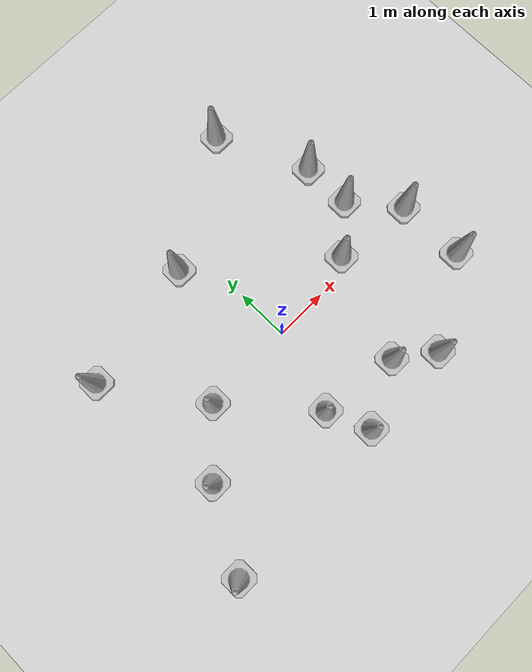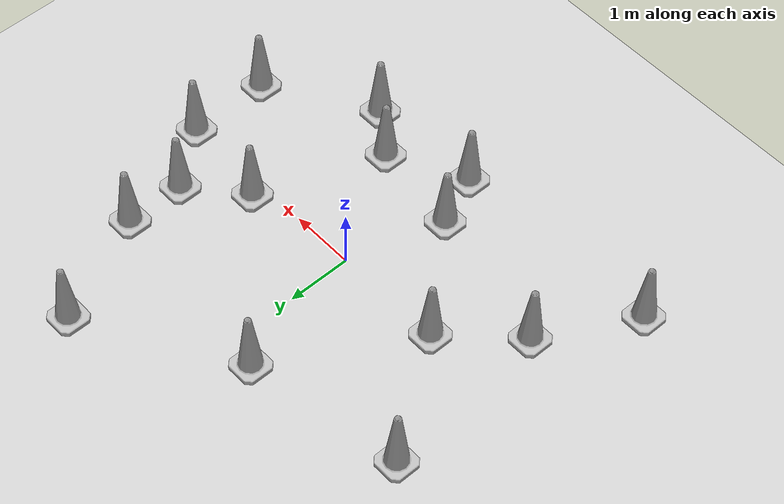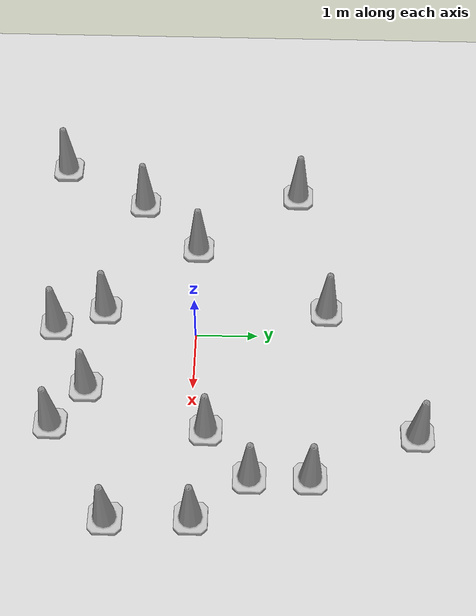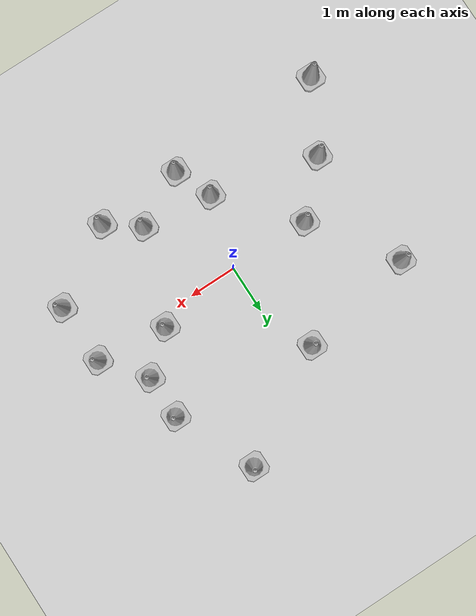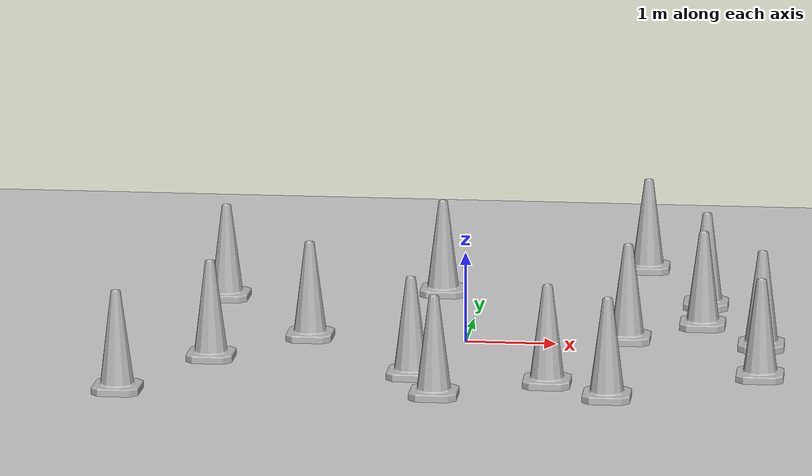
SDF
<sdf version="1.7">
 <world name="default">
  <light name="sun" type="directional">
   <pose>0 0 10 0 -0 0</pose>
   <diffuse>0.8 0.8 0.8 1</diffuse>
   <specular>0.2 0.2 0.2 1</specular>
   <attenuation>
    <range>1000</range>
    <constant>0.9</constant>
    <linear>0.01</linear>
    <quadratic>0.001</quadratic>
   </attenuation>
   <direction>-0.5 0.1 -0.9</direction>
   <spot><inner_angle>0</inner_angle><outer_angle>0</outer_angle><falloff>0</falloff></spot>
  </light>
  <model name="ground_plane">
   <static>1</static>
   <link name="link">
    <collision name="collision">
     <geometry><plane><normal>0 0 1</normal><size>100 100</size></plane></geometry>
     <surface>
      <contact><collide_bitmask>65535</collide_bitmask></contact>
      <friction><ode><mu>100</mu><mu2>50</mu2></ode></friction>
     </surface>
    </collision>
    <visual name="visual">
     <cast_shadows>0</cast_shadows>
     <geometry><plane><normal>0 0 1</normal><size>100 100</size></plane></geometry>
     <material>
      <script><uri>file://media/materials/scripts/gazebo.material</uri><name>Gazebo/Grey</name></script>
     </material>
    </visual>
   </link>
  </model>
  <gravity>0 0 -9.8</gravity>
  <magnetic_field>6e-06 2.3e-05 -4.2e-05</magnetic_field>
  <atmosphere type="adiabatic"/>
  <physics type="ode">
   <max_step_size>0.001</max_step_size>
   <real_time_factor>1</real_time_factor>
   <real_time_update_rate>1000</real_time_update_rate>
  </physics>
  <scene><ambient>0.4 0.4 0.4 1</ambient><background>0.7 0.7 0.7 1</background><shadows>1</shadows></scene>
  <audio><device>default</device></audio>
  <spherical_coordinates>
   <surface_model>EARTH_WGS84</surface_model>
   <latitude_deg>0</latitude_deg>
   <longitude_deg>0</longitude_deg>
   <elevation>0</elevation>
   <heading_deg>0</heading_deg>
  </spherical_coordinates>
  <model name="Construction Cone">
   <link name="link">
    <collision name="collision">
     <geometry>
      <mesh><scale>10 10 10</scale><uri>model://construction_cone/meshes/construction_cone.dae</uri></mesh>
     </geometry>
    </collision>
    <visual name="visual">
     <geometry>
      <mesh><scale>10 10 10</scale><uri>model://construction_cone/meshes/construction_cone.dae</uri></mesh>
     </geometry>
    </visual>
    <inertial>
     <inertia><ixx>1</ixx><ixy>0</ixy><ixz>0</ixz><iyy>1</iyy><iyz>0</iyz><izz>1</izz></inertia>
     <mass>1</mass>
    </inertial>
   </link>
   <pose>-0.433471 -1.49675 -0 -0 -0 -0</pose>
  </model>
  <model name="Construction Cone_0">
   <link name="link">
    <collision name="collision">
     <geometry>
      <mesh><scale>10 10 10</scale><uri>model://construction_cone/meshes/construction_cone.dae</uri></mesh>
     </geometry>
    </collision>
    <visual name="visual">
     <geometry>
      <mesh><scale>10 10 10</scale><uri>model://construction_cone/meshes/construction_cone.dae</uri></mesh>
     </geometry>
    </visual>
    <inertial>
     <inertia><ixx>1</ixx><ixy>0</ixy><ixz>0</ixz><iyy>1</iyy><iyz>0</iyz><izz>1</izz></inertia>
     <mass>1</mass>
    </inertial>
   </link>
   <pose>-1.71951 -0.017169 0 -0 -0 -0</pose>
  </model>
  <model name="Construction Cone_1">
   <link name="link">
    <collision name="collision">
     <geometry>
      <mesh><scale>10 10 10</scale><uri>model://construction_cone/meshes/construction_cone.dae</uri></mesh>
     </geometry>
    </collision>
    <visual name="visual">
     <geometry>
      <mesh><scale>10 10 10</scale><uri>model://construction_cone/meshes/construction_cone.dae</uri></mesh>
     </geometry>
    </visual>
    <inertial>
     <inertia><ixx>1</ixx><ixy>0</ixy><ixz>0</ixz><iyy>1</iyy><iyz>0</iyz><izz>1</izz></inertia>
     <mass>1</mass>
    </inertial>
   </link>
   <pose>1.0375 -1.69111 -0 0 -0 0</pose>
  </model>
  <model name="Construction Cone_2">
   <link name="link">
    <collision name="collision">
     <geometry>
      <mesh><scale>10 10 10</scale><uri>model://construction_cone/meshes/construction_cone.dae</uri></mesh>
     </geometry>
    </collision>
    <visual name="visual">
     <geometry>
      <mesh><scale>10 10 10</scale><uri>model://construction_cone/meshes/construction_cone.dae</uri></mesh>
     </geometry>
    </visual>
    <inertial>
     <inertia><ixx>1</ixx><ixy>0</ixy><ixz>0</ixz><iyy>1</iyy><iyz>0</iyz><izz>1</izz></inertia>
     <mass>1</mass>
    </inertial>
   </link>
   <pose>-0.476865 2.1304 -1e-05 0 -0 0</pose>
  </model>
  <model name="Construction Cone_3">
   <link name="link">
    <collision name="collision">
     <geometry>
      <mesh><scale>10 10 10</scale><uri>model://construction_cone/meshes/construction_cone.dae</uri></mesh>
     </geometry>
    </collision>
    <visual name="visual">
     <geometry>
      <mesh><scale>10 10 10</scale><uri>model://construction_cone/meshes/construction_cone.dae</uri></mesh>
     </geometry>
    </visual>
    <inertial>
     <inertia><ixx>1</ixx><ixy>0</ixy><ixz>0</ixz><iyy>1</iyy><iyz>0</iyz><izz>1</izz></inertia>
     <mass>1</mass>
    </inertial>
   </link>
   <pose>-2.90437 1.68114 -0 0 1e-06 0</pose>
  </model>
  <model name="Construction Cone_4">
   <link name="link">
    <collision name="collision">
     <geometry>
      <mesh><scale>10 10 10</scale><uri>model://construction_cone/meshes/construction_cone.dae</uri></mesh>
     </geometry>
    </collision>
    <visual name="visual">
     <geometry>
      <mesh><scale>10 10 10</scale><uri>model://construction_cone/meshes/construction_cone.dae</uri></mesh>
     </geometry>
    </visual>
    <inertial>
     <inertia><ixx>1</ixx><ixy>0</ixy><ixz>0</ixz><iyy>1</iyy><iyz>0</iyz><izz>1</izz></inertia>
     <mass>1</mass>
    </inertial>
   </link>
   <pose>-0.103173 -2.27523 -0 0 -0 0</pose>
  </model>
  <model name="Construction Cone_5">
   <link name="link">
    <collision name="collision">
     <geometry>
      <mesh><scale>10 10 10</scale><uri>model://construction_cone/meshes/construction_cone.dae</uri></mesh>
     </geometry>
    </collision>
    <visual name="visual">
     <geometry>
      <mesh><scale>10 10 10</scale><uri>model://construction_cone/meshes/construction_cone.dae</uri></mesh>
     </geometry>
    </visual>
    <inertial>
     <inertia><ixx>1</ixx><ixy>0</ixy><ixz>0</ixz><iyy>1</iyy><iyz>0</iyz><izz>1</izz></inertia>
     <mass>1</mass>
    </inertial>
   </link>
   <pose>2.5484 1.83018 -0 0 -1e-06 0</pose>
  </model>
  <model name="Construction Cone_6">
   <link name="link">
    <collision name="collision">
     <geometry>
      <mesh><scale>10 10 10</scale><uri>model://construction_cone/meshes/construction_cone.dae</uri></mesh>
     </geometry>
    </collision>
    <visual name="visual">
     <geometry>
      <mesh><scale>10 10 10</scale><uri>model://construction_cone/meshes/construction_cone.dae</uri></mesh>
     </geometry>
    </visual>
    <inertial>
     <inertia><ixx>1</ixx><ixy>0</ixy><ixz>0</ixz><iyy>1</iyy><iyz>0</iyz><izz>1</izz></inertia>
     <mass>1</mass>
    </inertial>
   </link>
   <pose>1.76366 0.2283 -0 0 -0 0</pose>
  </model>
  <model name="Construction Cone_7">
   <link name="link">
    <collision name="collision">
     <geometry>
      <mesh><scale>10 10 10</scale><uri>model://construction_cone/meshes/construction_cone.dae</uri></mesh>
     </geometry>
    </collision>
    <visual name="visual">
     <geometry>
      <mesh><scale>10 10 10</scale><uri>model://construction_cone/meshes/construction_cone.dae</uri></mesh>
     </geometry>
    </visual>
    <inertial>
     <inertia><ixx>1</ixx><ixy>0</ixy><ixz>0</ixz><iyy>1</iyy><iyz>0</iyz><izz>1</izz></inertia>
     <mass>1</mass>
    </inertial>
   </link>
   <pose>3.27096 -1.2051 -0 0 -0 0</pose>
  </model>
  <model name="Construction Cone_8">
   <link name="link">
    <collision name="collision">
     <geometry>
      <mesh><scale>10 10 10</scale><uri>model://construction_cone/meshes/construction_cone.dae</uri></mesh>
     </geometry>
    </collision>
    <visual name="visual">
     <geometry>
      <mesh><scale>10 10 10</scale><uri>model://construction_cone/meshes/construction_cone.dae</uri></mesh>
     </geometry>
    </visual>
    <inertial>
     <inertia><ixx>1</ixx><ixy>0</ixy><ixz>0</ixz><iyy>1</iyy><iyz>0</iyz><izz>1</izz></inertia>
     <mass>1</mass>
    </inertial>
   </link>
   <pose>3.2372 0.061077 0 -0 -0 -0</pose>
  </model>
  <model name="Construction Cone_9">
   <link name="link">
    <collision name="collision">
     <geometry>
      <mesh><scale>10 10 10</scale><uri>model://construction_cone/meshes/construction_cone.dae</uri></mesh>
     </geometry>
    </collision>
    <visual name="visual">
     <geometry>
      <mesh><scale>10 10 10</scale><uri>model://construction_cone/meshes/construction_cone.dae</uri></mesh>
     </geometry>
    </visual>
    <inertial>
     <inertia><ixx>1</ixx><ixy>0</ixy><ixz>0</ixz><iyy>1</iyy><iyz>0</iyz><izz>1</izz></inertia>
     <mass>1</mass>
    </inertial>
   </link>
   <pose>2.55642 0.912768 -8e-06 1e-06 -0 0</pose>
  </model>
  <model name="Construction Cone_10">
   <link name="link">
    <collision name="collision">
     <geometry>
      <mesh><scale>10 10 10</scale><uri>model://construction_cone/meshes/construction_cone.dae</uri></mesh>
     </geometry>
    </collision>
    <visual name="visual">
     <geometry>
      <mesh><scale>10 10 10</scale><uri>model://construction_cone/meshes/construction_cone.dae</uri></mesh>
     </geometry>
    </visual>
    <inertial>
     <inertia><ixx>1</ixx><ixy>0</ixy><ixz>0</ixz><iyy>1</iyy><iyz>0</iyz><izz>1</izz></inertia>
     <mass>1</mass>
    </inertial>
   </link>
   <pose>1.70658 -2.18437 -0 0 -0 0</pose>
  </model>
  <model name="Construction Cone_11">
   <link name="link">
    <collision name="collision">
     <geometry>
      <mesh><scale>10 10 10</scale><uri>model://construction_cone/meshes/construction_cone.dae</uri></mesh>
     </geometry>
    </collision>
    <visual name="visual">
     <geometry>
      <mesh><scale>10 10 10</scale><uri>model://construction_cone/meshes/construction_cone.dae</uri></mesh>
     </geometry>
    </visual>
    <inertial>
     <inertia><ixx>1</ixx><ixy>0</ixy><ixz>0</ixz><iyy>1</iyy><iyz>0</iyz><izz>1</izz></inertia>
     <mass>1</mass>
    </inertial>
   </link>
   <pose>1.78973 3.48884 -0 0 -1e-06 0</pose>
  </model>
  <model name="Construction Cone_12">
   <link name="link">
    <collision name="collision">
     <geometry>
      <mesh><scale>10 10 10</scale><uri>model://construction_cone/meshes/construction_cone.dae</uri></mesh>
     </geometry>
    </collision>
    <visual name="visual">
     <geometry>
      <mesh><scale>10 10 10</scale><uri>model://construction_cone/meshes/construction_cone.dae</uri></mesh>
     </geometry>
    </visual>
    <inertial>
     <inertia><ixx>1</ixx><ixy>0</ixy><ixz>0</ixz><iyy>1</iyy><iyz>0</iyz><izz>1</izz></inertia>
     <mass>1</mass>
    </inertial>
   </link>
   <pose>-3.44331 -2.40662 0 -0 -0 -0</pose>
  </model>
  <model name="Construction Cone_13">
   <link name="link">
    <collision name="collision">
     <geometry>
      <mesh><scale>10 10 10</scale><uri>model://construction_cone/meshes/construction_cone.dae</uri></mesh>
     </geometry>
    </collision>
    <visual name="visual">
     <geometry>
      <mesh><scale>10 10 10</scale><uri>model://construction_cone/meshes/construction_cone.dae</uri></mesh>
     </geometry>
    </visual>
    <inertial>
     <inertia><ixx>1</ixx><ixy>0</ixy><ixz>0</ixz><iyy>1</iyy><iyz>0</iyz><izz>1</izz></inertia>
     <mass>1</mass>
    </inertial>
   </link>
   <pose>-2.67042 -0.986382 -0 0 -0 0</pose>
  </model>
 </world>
</sdf>
